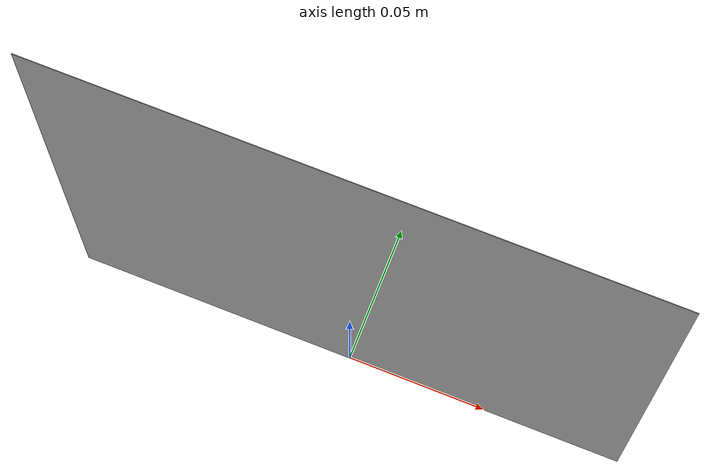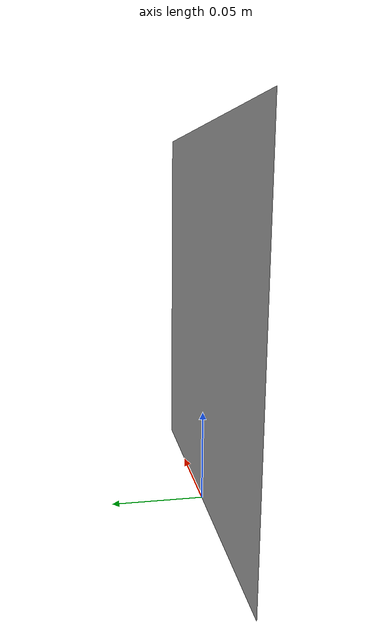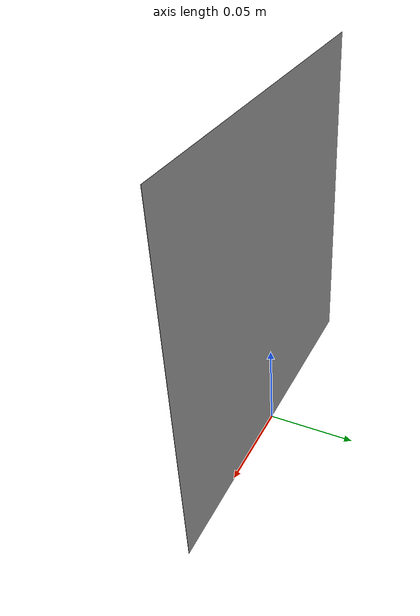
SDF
<?xml version="1.0"?>
<sdf version="1.6">
  <model name="qr_diningroom">
    <static>true</static>

    <link name="link">
      <visual name="visual">
        <pose>0 0 0.1 1.5708 1.5708 3.1416</pose>
        <geometry>
          <plane>
            <normal>0 0 1</normal>
            <size>0.2 0.2</size>
          </plane>
        </geometry>

        <material>
          <script>
            <uri>model://qr_diningroom/materials/scripts</uri>
            <uri>model://qr_diningroom/materials/textures</uri> <name>QR/DiningRoom</name>
          </script>
        </material>
      </visual>
    </link>

  </model>
</sdf>
